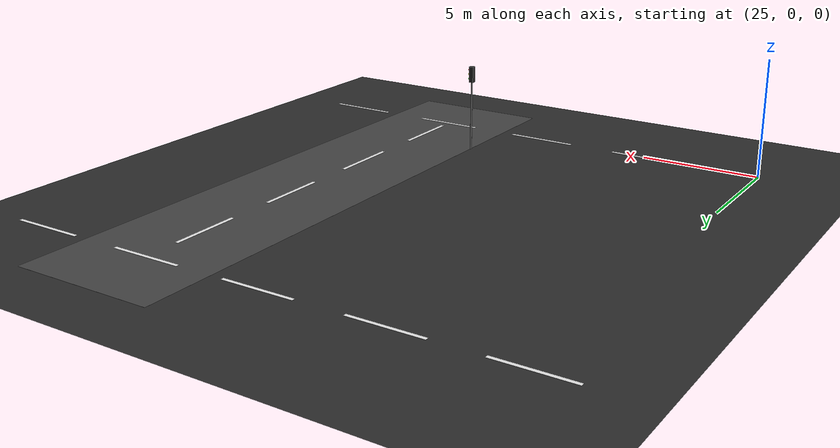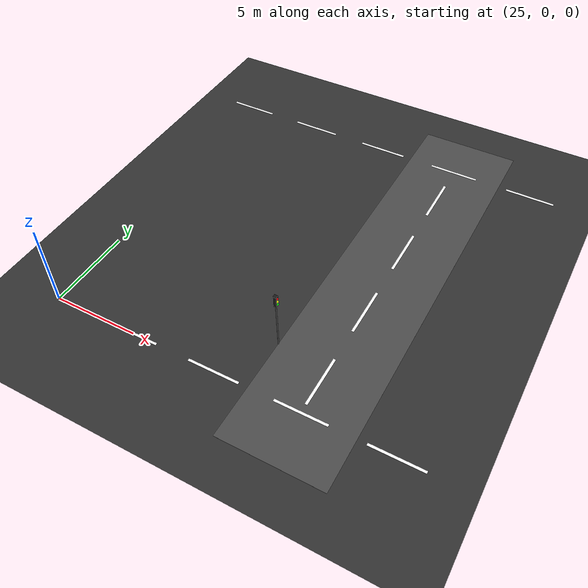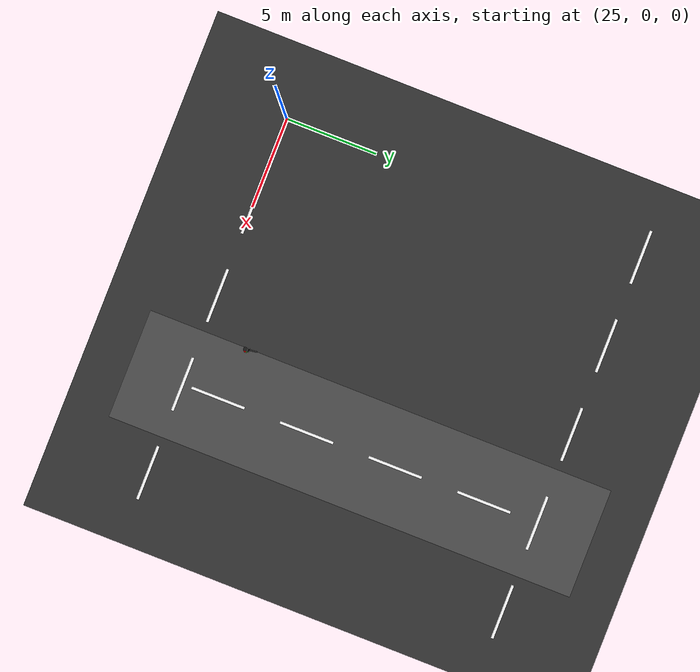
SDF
<sdf version="1.7">
 <world name="teknofest_city">
  <model name="ground_plane">
   <static>true</static>
   <link name="link">
    <collision name="collision">
     <geometry><plane><normal>0 0 1</normal><size>200 200</size></plane></geometry>
    </collision>
    <visual name="visual">
     <geometry><plane><normal>0 0 1</normal><size>200 200</size></plane></geometry>
     <material>
      <ambient>0.15 0.15 0.15 1</ambient>
      <diffuse>0.2 0.2 0.2 1</diffuse>
      <specular>0.05 0.05 0.05 1</specular>
     </material>
    </visual>
   </link>
  </model>
  <model name="road_ns_east">
   <static>true</static>
   <pose>40 10 0.002 0 0 0</pose>
   <link name="link">
    <visual name="visual">
     <geometry><box><size>6 26 0.001</size></box></geometry>
     <material><ambient>0.25 0.25 0.25 1</ambient><diffuse>0.3 0.3 0.3 1</diffuse></material>
    </visual>
   </link>
  </model>
  <model name="lane_ew_main_12">
   <static>true</static>
   <pose>30 0 0.005 0 0 0.0</pose>
   <link name="link">
    <visual name="visual">
     <geometry><box><size>3.0 0.15 0.01</size></box></geometry>
     <material><ambient>0.9 0.9 0.9 1</ambient><diffuse>1.0 1.0 1.0 1</diffuse></material>
    </visual>
   </link>
  </model>
  <model name="lane_ew_main_13">
   <static>true</static>
   <pose>35 0 0.005 0 0 0.0</pose>
   <link name="link">
    <visual name="visual">
     <geometry><box><size>3.0 0.15 0.01</size></box></geometry>
     <material><ambient>0.9 0.9 0.9 1</ambient><diffuse>1.0 1.0 1.0 1</diffuse></material>
    </visual>
   </link>
  </model>
  <model name="lane_ew_main_14">
   <static>true</static>
   <pose>40 0 0.005 0 0 0.0</pose>
   <link name="link">
    <visual name="visual">
     <geometry><box><size>3.0 0.15 0.01</size></box></geometry>
     <material><ambient>0.9 0.9 0.9 1</ambient><diffuse>1.0 1.0 1.0 1</diffuse></material>
    </visual>
   </link>
  </model>
  <model name="lane_ew_main_15">
   <static>true</static>
   <pose>45 0 0.005 0 0 0.0</pose>
   <link name="link">
    <visual name="visual">
     <geometry><box><size>3.0 0.15 0.01</size></box></geometry>
     <material><ambient>0.9 0.9 0.9 1</ambient><diffuse>1.0 1.0 1.0 1</diffuse></material>
    </visual>
   </link>
  </model>
  <model name="lane_ew_north_11">
   <static>true</static>
   <pose>25 20 0.005 0 0 0.0</pose>
   <link name="link">
    <visual name="visual">
     <geometry><box><size>3.0 0.15 0.01</size></box></geometry>
     <material><ambient>0.9 0.9 0.9 1</ambient><diffuse>1.0 1.0 1.0 1</diffuse></material>
    </visual>
   </link>
  </model>
  <model name="lane_ew_north_12">
   <static>true</static>
   <pose>30 20 0.005 0 0 0.0</pose>
   <link name="link">
    <visual name="visual">
     <geometry><box><size>3.0 0.15 0.01</size></box></geometry>
     <material><ambient>0.9 0.9 0.9 1</ambient><diffuse>1.0 1.0 1.0 1</diffuse></material>
    </visual>
   </link>
  </model>
  <model name="lane_ew_north_13">
   <static>true</static>
   <pose>35 20 0.005 0 0 0.0</pose>
   <link name="link">
    <visual name="visual">
     <geometry><box><size>3.0 0.15 0.01</size></box></geometry>
     <material><ambient>0.9 0.9 0.9 1</ambient><diffuse>1.0 1.0 1.0 1</diffuse></material>
    </visual>
   </link>
  </model>
  <model name="lane_ew_north_14">
   <static>true</static>
   <pose>40 20 0.005 0 0 0.0</pose>
   <link name="link">
    <visual name="visual">
     <geometry><box><size>3.0 0.15 0.01</size></box></geometry>
     <material><ambient>0.9 0.9 0.9 1</ambient><diffuse>1.0 1.0 1.0 1</diffuse></material>
    </visual>
   </link>
  </model>
  <model name="lane_ew_north_15">
   <static>true</static>
   <pose>45 20 0.005 0 0 0.0</pose>
   <link name="link">
    <visual name="visual">
     <geometry><box><size>3.0 0.15 0.01</size></box></geometry>
     <material><ambient>0.9 0.9 0.9 1</ambient><diffuse>1.0 1.0 1.0 1</diffuse></material>
    </visual>
   </link>
  </model>
  <model name="lane_ns_east_0">
   <static>true</static>
   <pose>40 2 0.005 0 0 1.5707</pose>
   <link name="link">
    <visual name="visual">
     <geometry><box><size>3.0 0.15 0.01</size></box></geometry>
     <material><ambient>0.9 0.9 0.9 1</ambient><diffuse>1.0 1.0 1.0 1</diffuse></material>
    </visual>
   </link>
  </model>
  <model name="lane_ns_east_1">
   <static>true</static>
   <pose>40 7 0.005 0 0 1.5707</pose>
   <link name="link">
    <visual name="visual">
     <geometry><box><size>3.0 0.15 0.01</size></box></geometry>
     <material><ambient>0.9 0.9 0.9 1</ambient><diffuse>1.0 1.0 1.0 1</diffuse></material>
    </visual>
   </link>
  </model>
  <model name="lane_ns_east_2">
   <static>true</static>
   <pose>40 12 0.005 0 0 1.5707</pose>
   <link name="link">
    <visual name="visual">
     <geometry><box><size>3.0 0.15 0.01</size></box></geometry>
     <material><ambient>0.9 0.9 0.9 1</ambient><diffuse>1.0 1.0 1.0 1</diffuse></material>
    </visual>
   </link>
  </model>
  <model name="lane_ns_east_3">
   <static>true</static>
   <pose>40 17 0.005 0 0 1.5707</pose>
   <link name="link">
    <visual name="visual">
     <geometry><box><size>3.0 0.15 0.01</size></box></geometry>
     <material><ambient>0.9 0.9 0.9 1</ambient><diffuse>1.0 1.0 1.0 1</diffuse></material>
    </visual>
   </link>
  </model>
  <model name="traffic_light_4">
   <static>true</static>
   <pose>37 3 0 0 0 0</pose>
   <link name="pole">
    <visual name="pole_visual">
     <geometry><cylinder><radius>0.04</radius><length>3.2</length></cylinder></geometry>
     <pose>0 0 1.6 0 0 0</pose>
     <material><ambient>0.2 0.2 0.2 1</ambient><diffuse>0.3 0.3 0.3 1</diffuse></material>
    </visual>
    <collision name="pole_collision">
     <geometry><cylinder><radius>0.04</radius><length>3.2</length></cylinder></geometry>
     <pose>0 0 1.6 0 0 0</pose>
    </collision>
   </link>
   <link name="housing">
    <pose>0 0 3.4 0 0 0</pose>
    <visual name="housing_visual">
     <geometry><box><size>0.2 0.2 0.7</size></box></geometry>
     <material><ambient>0.05 0.05 0.05 1</ambient><diffuse>0.1 0.1 0.1 1</diffuse></material>
    </visual>
    <collision name="housing_collision"><geometry><box><size>0.2 0.2 0.7</size></box></geometry></collision>
   </link>
   <joint name="housing_joint" type="fixed"><parent>pole</parent><child>housing</child></joint>
   <link name="red_light">
    <pose>0.11 0 3.6 0 0 0</pose>
    <visual name="red_visual">
     <geometry><sphere><radius>0.06</radius></sphere></geometry>
     <material>
      <ambient>0.8 0.0 0.0 1</ambient>
      <diffuse>1.0 0.0 0.0 1</diffuse>
      <emissive>0.6 0.0 0.0 1</emissive>
     </material>
    </visual>
   </link>
   <joint name="red_joint" type="fixed"><parent>housing</parent><child>red_light</child></joint>
   <link name="yellow_light">
    <pose>0.11 0 3.4 0 0 0</pose>
    <visual name="yellow_visual">
     <geometry><sphere><radius>0.06</radius></sphere></geometry>
     <material>
      <ambient>0.8 0.8 0.0 1</ambient>
      <diffuse>1.0 1.0 0.0 1</diffuse>
      <emissive>0.6 0.6 0.0 1</emissive>
     </material>
    </visual>
   </link>
   <joint name="yellow_joint" type="fixed"><parent>housing</parent><child>yellow_light</child></joint>
   <link name="green_light">
    <pose>0.11 0 3.2 0 0 0</pose>
    <visual name="green_visual">
     <geometry><sphere><radius>0.06</radius></sphere></geometry>
     <material>
      <ambient>0.0 0.8 0.0 1</ambient>
      <diffuse>0.0 1.0 0.0 1</diffuse>
      <emissive>0.0 0.6 0.0 1</emissive>
     </material>
    </visual>
   </link>
   <joint name="green_joint" type="fixed"><parent>housing</parent><child>green_light</child></joint>
  </model>
 </world>
</sdf>
